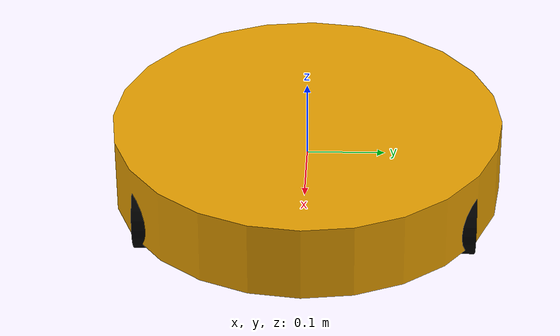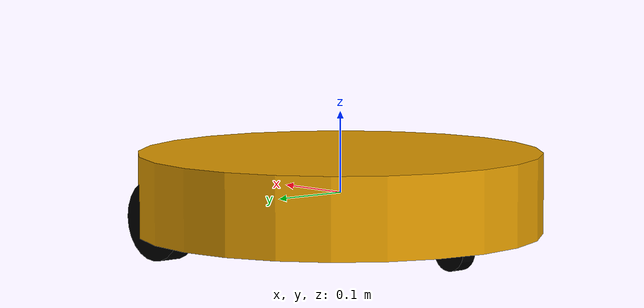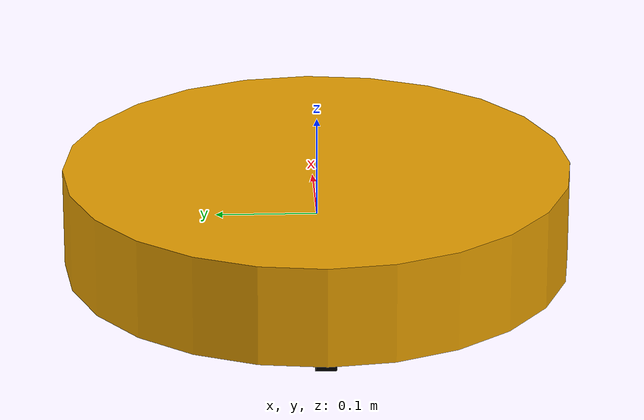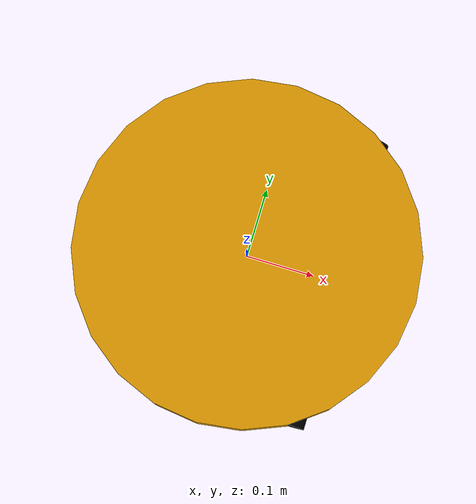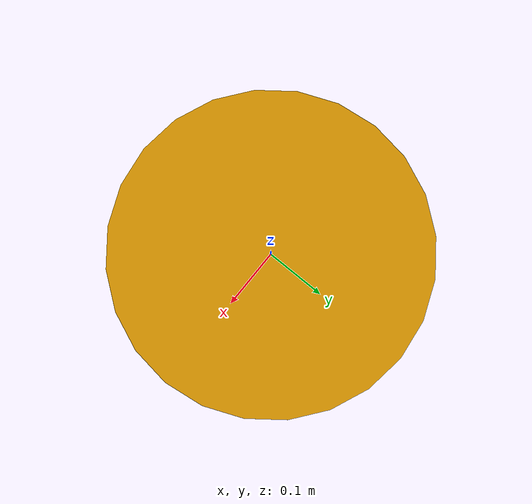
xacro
<?xml version ="1.0"?>
<robot xmlns:xacro="http://www.ros.org/wiki/xacro" name="puckbot">

    <xacro:property name="chassis_diameter" value="0.5"/>
    <xacro:property name="chassis_height" value="0.1"/>
    <xacro:property name="wheel_diameter" value="0.1"/>
    <xacro:property name="wheel_width" value="0.03"/>
    <xacro:property name="wheel_desaxing" value="0.4"/>
    <xacro:property name="wheel_forwarding" value="0.1"/>
    <xacro:property name="crazy_wheel_backwarding" value="0.2"/>
    <xacro:property name="crazy_wheel_diameter" value="0.05"/>
    <xacro:property name="crazy_wheel_width" value="0.02"/>

    <xacro:include filename="$(find puckbot_description)/urdf/wheel.xacro" />
    <xacro:include filename="$(find puckbot_description)/urdf/inertia.xacro" />

    <material name="Black">
        <color rgba="0.0 0.0 0.0 1.0"/>
    </material>

    <link name="base_link">
        <visual>
            <geometry>
                <cylinder radius="${chassis_diameter/2}" length="${chassis_height}" />
            </geometry>
        </visual>
        <collision>
            <geometry>
                <cylinder radius="${chassis_diameter/2}" length="${chassis_height}" />
            </geometry>
        </collision>
     </link>

    <!-- Ajout d'un corps factice qui reprend masse et inertie du corps
    La bibliotheque KDL n'admet pas que le premier corps de la modelisation
    est une masse et une inertie-->
    <link name="inertial_link">
        <xacro:cylinder_inertial density="0.5" r="${chassis_diameter/2}" h="${chassis_height}"/>
    </link>
    <joint name="inertial_joint" type="fixed">
        <parent link="base_link"/>
        <child link="inertial_link"/>
    </joint>

    <xacro:wheel_macro side="left">
        <cylinder radius="${wheel_diameter/2}" length="${wheel_width}" />
    </xacro:wheel_macro>

    <xacro:wheel_macro side="right">
        <cylinder radius="${wheel_diameter/2}" length="${wheel_width}" />
    </xacro:wheel_macro>

    <link name="crazy_wheel_support">
        <xacro:cylinder_inertial density="5.0" r="0.025" h="0.01"/>
    </link>

    <joint name="crazy_wheel_support_joint" type="continuous">
        <parent link="base_link"/>
        <child link="crazy_wheel_support"/>
        <origin xyz="${-crazy_wheel_backwarding} 0.0 ${-wheel_diameter/4-(wheel_diameter - crazy_wheel_diameter)/2}"/>
        <axis xyz="0.0 0.0 1.0"/>
    </joint>

    <link name="crazy_wheel">
        <visual>
            <geometry>
                <cylinder radius="${crazy_wheel_diameter/2}" length="${crazy_wheel_width}" />
            </geometry>
            <origin rpy="${pi/2} 0.0 0.0"/>
            <material name="Black"/>
        </visual>
        <collision>
            <geometry>
                <cylinder radius="${crazy_wheel_diameter/2}" length="${crazy_wheel_width}" />
            </geometry>
            <origin rpy="${pi/2} 0.0 0.0"/>
            <material name="Black"/>
        </collision>
        <xacro:cylinder_inertial density="1.5" r="${crazy_wheel_diameter/2}" h="${crazy_wheel_width}"/>
    </link>

    <joint name="crazy_wheel_joint" type="continuous">
        <parent link="crazy_wheel_support"/>
        <child link="crazy_wheel"/>
        <origin xyz="0.0 0.0 0.0"/>
        <axis xyz="0.0 1.0 0.0"/>
    </joint>

    <link name="imu_link" />
    <joint name="imu_joint" type="fixed">
        <parent link="base_link"/>
        <child link="imu_link"/>
    </joint>

    <link name="camera" />
    <joint name="camera_joint" type="fixed">
        <parent link="base_link"/>
        <child link="camera"/>
        <origin xyz="${chassis_diameter/2+0.01} 0.0 0.0"/>
    </joint>

    <link name="lidar_link" />
    <joint name="lidar_joint" type="fixed">
        <parent link="base_link"/>
        <child link="lidar_link"/>
        <origin xyz="0.0 0.0 ${chassis_height+0.01}"/>
    </joint>

</robot>

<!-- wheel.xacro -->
<robot xmlns:xacro="http://www.ros.org/wiki/xacro" name="puckbot">

    <xacro:macro name="wheel_joint_origin" params="side">
        <xacro:if value="${side == 'left'}">
            <origin xyz="${wheel_forwarding} ${wheel_desaxing/2} ${-wheel_diameter/4}"/>
        </xacro:if>
        <xacro:if value="${side == 'right'}">
            <origin xyz="${wheel_forwarding} ${-wheel_desaxing/2} ${-wheel_diameter/4}"/>
        </xacro:if>
    </xacro:macro>

    <xacro:macro name="wheel_macro" params="side *shape">
    <link name="${side}_wheel">
        <visual>
            <geometry>
                <xacro:insert_block name="shape" />
            </geometry>
            <origin rpy="${pi/2} 0.0 0.0"/>
            <material name="Black"/>
        </visual>
        <collision>
            <geometry>
                <xacro:insert_block name="shape" />
            </geometry>
            <origin rpy="${pi/2} 0.0 0.0"/>
            <material name="Black"/>
        </collision>
        <xacro:cylinder_inertial density="7.8" r="${wheel_diameter/2}" h="${wheel_width}"/>
    </link>

    <joint name="${side}_wheel_joint" type="continuous">
        <parent link="base_link"/>
        <child link="${side}_wheel"/>
        <xacro:wheel_joint_origin side="${side}"/>
        <axis xyz="0.0 1.0 0.0"/>
    </joint>

    </xacro:macro>

</robot>

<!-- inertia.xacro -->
<robot xmlns:xacro="http://www.ros.org/wiki/xacro" name="puckbot">

<xacro:macro name="cylinder_inertial" params="density r h">
    <xacro:property name="mass" value="${density * 1000 * pi * r*r * h}"/> <!-- density in unit less must be converted in kg/m3 -->
    <inertial>
        <mass value="${mass}"/>
        <inertia ixx="${mass/12*(3*r*r + h*h)}"
                 ixy="0.0"
                 ixz="0.0"
                 iyy="${mass/12*(3*r*r + h*h)}"
                 iyz="0.0"
                 izz="${mass*r*r/2}"/>
    </inertial>
</xacro:macro>

</robot>
